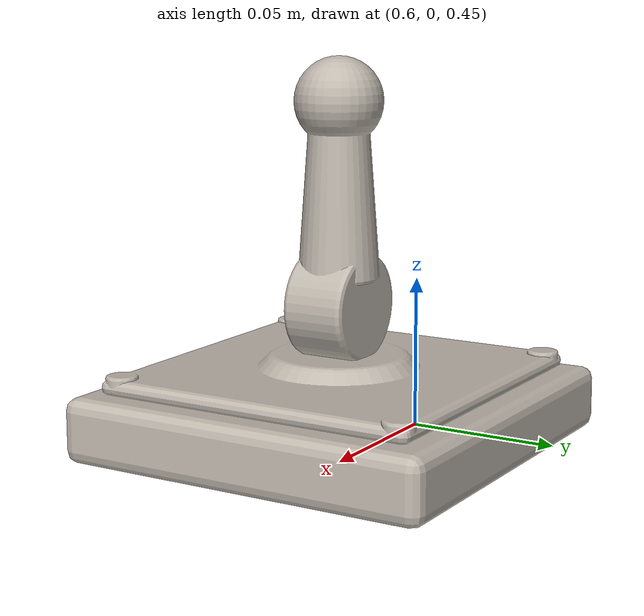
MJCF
<?xml version="1.0"?>
<mujoco model="switch">
  <compiler angle="radian" meshdir="assets" texturedir="assets"/>

  <asset>
    <texture name="switch_plate_tex" type="2d" file="switch_plate_tex.png"/>
    <material name="switch_plate_mat" texture="switch_plate_tex" specular="0.35" shininess="0.25"/>
    <mesh name="switch_plate_vis" file="switch_plate_vis.obj"/>
    <texture name="switch_toggle_tex" type="2d" file="switch_toggle_tex.png"/>
    <material name="switch_toggle_mat" texture="switch_toggle_tex" specular="0.25" shininess="0.3"/>
    <mesh name="switch_toggle_vis" file="switch_toggle_vis.obj"/>
  </asset>

  <worldbody>
    <body name="switch_base" pos="0.65 0 0.5" mocap="true">
      <!-- 120 x 120 x 20 mm metal-clad switch box, raised bezel, four screws. -->
      <geom name="vis_plate" pos="0 0 -0.014" quat="0.7071067812 0 0.7071067812 0" type="mesh" mesh="switch_plate_vis" material="switch_plate_mat" contype="0" conaffinity="0" group="2" mass="0"/>
      <!-- Horizontal housing below the pivot: both toggle stops clear its top.
           The old vertical plate occupied the positive-angle sweep. -->
      <geom type="box" name="switch_body" size="0.06 0.06 0.01" pos="0 0 -0.034" group="3"
            condim="3" friction="1 0.03 0.003" rgba="0.5 0.5 0.5 0.3"
            contype="2" conaffinity="1" solref="0.01 1"/>
      <!-- Base site at the toggle tip when joint = 0 (the centre pose). -->
      <site name="base_site" pos="0.0 0.0 0.062" size="0.004" rgba="0 0 1 0.3"/>
      <body name="handle">
        <joint name="switch_hinge" type="hinge" axis="0 1 0" pos="0 0 0"
               range="-0.7853982 0.7853982" limited="true" damping="0.0015" armature="1e-5"/>
        <!-- Pivot boss + tapered bat + ball knob, one mesh, zero mass. -->
        <geom name="vis_toggle" type="mesh" mesh="switch_toggle_vis" material="switch_toggle_mat" contype="0" conaffinity="0" group="2" mass="0"/>
        <!-- Toggle lever: light shaft... -->
        <geom type="box" name="handle" pos="0.0 0.0 0.026" size="0.012 0.012 0.03" group="3"
              mass="0.004"
              condim="3" friction="1 0.03 0.003" rgba="0.5 0.5 0.5 0.3"
              contype="2" conaffinity="1" solref="0.01 1"/>
        <!-- ...with a top weight well above the pivot -> over-centre bistability. -->
        <geom type="box" name="switch_weight" pos="0.0 0.0 0.062" group="3"
              size="0.013 0.013 0.013" mass="0.05"
              condim="3" friction="1 0.03 0.003" rgba="0.5 0.5 0.5 0.3"
              contype="2" conaffinity="1" solref="0.01 1"/>
        <site name="object_site" pos="0.0 0.0 0.062" size="0.004" rgba="1 0 0 1"/>
      </body>
    </body>
  </worldbody>
</mujoco>
